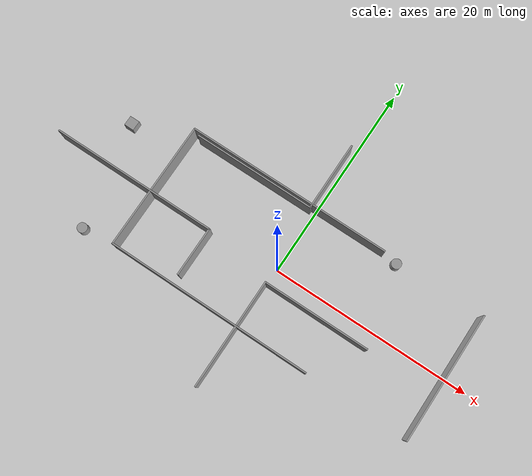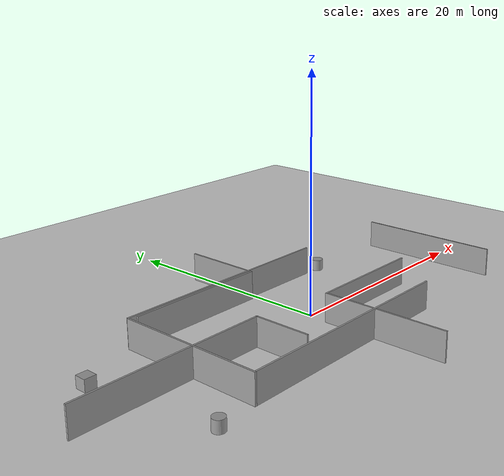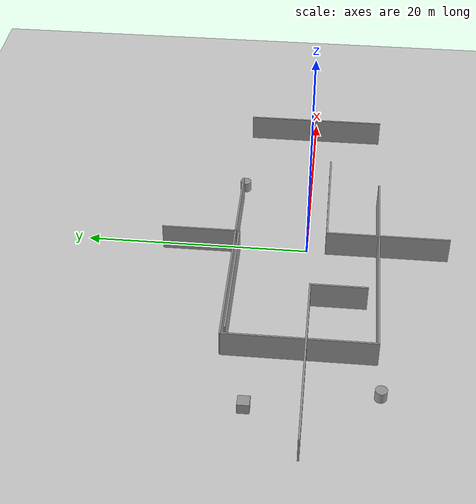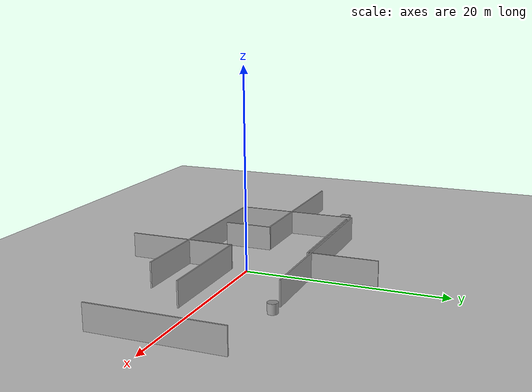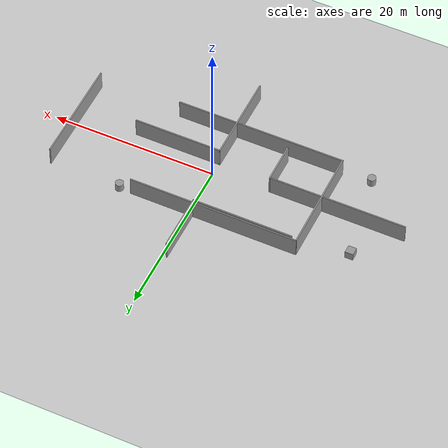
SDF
<sdf version="1.7">
 <world name="default">
  <light name="sun" type="directional">
   <pose>0 0 10 0 -0 0</pose>
   <diffuse>0.8 0.8 0.8 1</diffuse>
   <specular>0.2 0.2 0.2 1</specular>
   <attenuation>
    <range>1000</range>
    <constant>0.9</constant>
    <linear>0.01</linear>
    <quadratic>0.001</quadratic>
   </attenuation>
   <direction>-0.5 0.1 -0.9</direction>
   <spot><inner_angle>0</inner_angle><outer_angle>0</outer_angle><falloff>0</falloff></spot>
  </light>
  <model name="ground_plane">
   <static>1</static>
   <link name="link">
    <collision name="collision">
     <geometry><plane><normal>0 0 1</normal><size>100 100</size></plane></geometry>
     <surface>
      <contact><collide_bitmask>65535</collide_bitmask></contact>
      <friction><ode><mu>100</mu><mu2>50</mu2></ode></friction>
     </surface>
    </collision>
    <visual name="visual">
     <cast_shadows>0</cast_shadows>
     <geometry><plane><normal>0 0 1</normal><size>100 100</size></plane></geometry>
     <material>
      <script><uri>file://media/materials/scripts/gazebo.material</uri><name>Gazebo/Grey</name></script>
     </material>
    </visual>
   </link>
  </model>
  <gravity>0 0 -9.8</gravity>
  <magnetic_field>6e-06 2.3e-05 -4.2e-05</magnetic_field>
  <atmosphere type="adiabatic"/>
  <physics type="ode">
   <max_step_size>0.002</max_step_size>
   <real_time_factor>1</real_time_factor>
   <real_time_update_rate>500</real_time_update_rate>
  </physics>
  <scene><ambient>0.4 0.4 0.4 1</ambient><background>0.7 0.7 0.7 1</background><shadows>0</shadows></scene>
  <audio><device>default</device></audio>
  <spherical_coordinates>
   <surface_model>EARTH_WGS84</surface_model>
   <latitude_deg>0</latitude_deg>
   <longitude_deg>0</longitude_deg>
   <elevation>0</elevation>
   <heading_deg>0</heading_deg>
  </spherical_coordinates>
  <model name="room">
   <pose>-3.10712 0.08613 0 0 -0 0</pose>
   <link name="Wall_14">
    <collision name="Wall_14_Collision">
     <geometry><box><size>12.875 0.15 2.5</size></box></geometry>
     <pose>0 0 1.25 0 -0 0</pose>
    </collision>
    <visual name="Wall_14_Visual">
     <pose>0 0 1.25 0 -0 0</pose>
     <geometry><box><size>12.875 0.15 2.5</size></box></geometry>
     <material>
      <script><uri>file://media/materials/scripts/gazebo.material</uri><name>Gazebo/Grey</name></script>
      <ambient>1 1 1 1</ambient>
     </material>
     <meta><layer>0</layer></meta>
    </visual>
    <pose>-10.275 -0.083492 0 0 -0 -1.5708</pose>
   </link>
   <link name="Wall_15">
    <collision name="Wall_15_Collision">
     <geometry><box><size>20.625 0.15 2.5</size></box></geometry>
     <pose>0 0 1.25 0 -0 0</pose>
    </collision>
    <visual name="Wall_15_Visual">
     <pose>0 0 1.25 0 -0 0</pose>
     <geometry><box><size>20.625 0.15 2.5</size></box></geometry>
     <material>
      <script><uri>file://media/materials/scripts/gazebo.material</uri><name>Gazebo/Grey</name></script>
      <ambient>1 1 1 1</ambient>
     </material>
     <meta><layer>0</layer></meta>
    </visual>
    <pose>0 -6.44175 0 0 -0 0</pose>
   </link>
   <link name="Wall_16">
    <collision name="Wall_16_Collision">
     <geometry><box><size>12.875 0.15 2.5</size></box></geometry>
     <pose>0 0 1.25 0 -0 0</pose>
    </collision>
    <visual name="Wall_16_Visual">
     <pose>0 0 1.25 0 -0 0</pose>
     <geometry><box><size>12.875 0.15 2.5</size></box></geometry>
     <material>
      <script><uri>file://media/materials/scripts/gazebo.material</uri><name>Gazebo/Grey</name></script>
      <ambient>1 1 1 1</ambient>
     </material>
     <meta><layer>0</layer></meta>
    </visual>
    <pose>20.55 -0.083492 0 0 -0 1.5708</pose>
   </link>
   <link name="Wall_17">
    <collision name="Wall_17_Collision">
     <geometry><box><size>20.62508 0.15 2.5</size></box></geometry>
     <pose>0 0 1.25 0 -0 0</pose>
    </collision>
    <visual name="Wall_17_Visual">
     <pose>0 0 1.25 0 -0 0</pose>
     <geometry><box><size>20.62508 0.15 2.5</size></box></geometry>
     <material>
      <script><uri>file://media/materials/scripts/gazebo.material</uri><name>Gazebo/Grey</name></script>
      <ambient>1 1 1 1</ambient>
     </material>
     <meta><layer>0</layer></meta>
    </visual>
    <pose>0 6.35825 0 0 -0 3.14159</pose>
   </link>
   <link name="Wall_19">
    <collision name="Wall_19_Collision">
     <geometry><box><size>7 0.15 2.5</size></box></geometry>
     <pose>0 0 1.25 0 -0 0</pose>
    </collision>
    <visual name="Wall_19_Visual">
     <pose>0 0 1.25 0 -0 0</pose>
     <geometry><box><size>7 0.15 2.5</size></box></geometry>
     <material>
      <script><uri>file://media/materials/scripts/gazebo.material</uri><name>Gazebo/Grey</name></script>
      <ambient>1 1 1 1</ambient>
     </material>
     <meta><layer>0</layer></meta>
    </visual>
    <pose>2.55012 9.45849 0 0 -0 -1.5708</pose>
   </link>
   <link name="Wall_20">
    <collision name="Wall_20_Collision">
     <geometry><box><size>12.25 0.15 2.5</size></box></geometry>
     <pose>0 0 1.25 0 -0 0</pose>
    </collision>
    <visual name="Wall_20_Visual">
     <pose>0 0 1.25 0 -0 0</pose>
     <geometry><box><size>12.25 0.15 2.5</size></box></geometry>
     <material>
      <script><uri>file://media/materials/scripts/gazebo.material</uri><name>Gazebo/Grey</name></script>
      <ambient>1 1 1 1</ambient>
     </material>
     <meta><layer>0</layer></meta>
    </visual>
    <pose>-3.49988 6.03349 0 0 -0 3.14159</pose>
   </link>
   <link name="Wall_22">
    <collision name="Wall_22_Collision">
     <geometry><box><size>16.75 0.15 2.5</size></box></geometry>
     <pose>0 0 1.25 0 -0 0</pose>
    </collision>
    <visual name="Wall_22_Visual">
     <pose>0 0 1.25 0 -0 0</pose>
     <geometry><box><size>16.75 0.15 2.5</size></box></geometry>
     <material>
      <script><uri>file://media/materials/scripts/gazebo.material</uri><name>Gazebo/Grey</name></script>
      <ambient>1 1 1 1</ambient>
     </material>
     <meta><layer>0</layer></meta>
    </visual>
    <pose>-12.1568 -0.625152 0 0 -0 0</pose>
   </link>
   <link name="Wall_23">
    <collision name="Wall_23_Collision">
     <geometry><box><size>5 0.15 2.5</size></box></geometry>
     <pose>0 0 1.25 0 -0 0</pose>
    </collision>
    <visual name="Wall_23_Visual">
     <pose>0 0 1.25 0 -0 0</pose>
     <geometry><box><size>5 0.15 2.5</size></box></geometry>
     <material>
      <script><uri>file://media/materials/scripts/gazebo.material</uri><name>Gazebo/Grey</name></script>
      <ambient>1 1 1 1</ambient>
     </material>
     <meta><layer>0</layer></meta>
    </visual>
    <pose>-3.85679 -3.05015 0 0 -0 -1.5708</pose>
   </link>
   <link name="Wall_25">
    <collision name="Wall_25_Collision">
     <geometry><box><size>11 0.15 2.5</size></box></geometry>
     <pose>0 0 1.25 0 -0 0</pose>
    </collision>
    <visual name="Wall_25_Visual">
     <pose>0 0 1.25 0 -0 0</pose>
     <geometry><box><size>11 0.15 2.5</size></box></geometry>
     <material>
      <script><uri>file://media/materials/scripts/gazebo.material</uri><name>Gazebo/Grey</name></script>
      <ambient>1 1 1 1</ambient>
     </material>
     <meta><layer>0</layer></meta>
    </visual>
    <pose>2.97226 -7.23129 0 0 -0 1.5708</pose>
   </link>
   <link name="Wall_26">
    <collision name="Wall_26_Collision">
     <geometry><box><size>10.75 0.15 2.5</size></box></geometry>
     <pose>0 0 1.25 0 -0 0</pose>
    </collision>
    <visual name="Wall_26_Visual">
     <pose>0 0 1.25 0 -0 0</pose>
     <geometry><box><size>10.75 0.15 2.5</size></box></geometry>
     <material>
      <script><uri>file://media/materials/scripts/gazebo.material</uri><name>Gazebo/Grey</name></script>
      <ambient>1 1 1 1</ambient>
     </material>
     <meta><layer>0</layer></meta>
    </visual>
    <pose>8.27226 -1.80629 0 0 -0 0</pose>
   </link>
   <static>1</static>
  </model>
  <model name="unit_box">
   <pose>-18.9964 3.97073 0.499995 0 -1e-05 0</pose>
   <link name="link">
    <inertial>
     <mass>1</mass>
     <inertia>
      <ixx>0.166667</ixx>
      <ixy>0</ixy>
      <ixz>0</ixz>
      <iyy>0.166667</iyy>
      <iyz>0</iyz>
      <izz>0.166667</izz>
     </inertia>
    </inertial>
    <collision name="collision"><geometry><box><size>1 1 1</size></box></geometry></collision>
    <visual name="visual">
     <geometry><box><size>1 1 1</size></box></geometry>
     <material>
      <script><name>Gazebo/Grey</name><uri>file://media/materials/scripts/gazebo.material</uri></script>
     </material>
    </visual>
   </link>
  </model>
  <model name="unit_cylinder">
   <pose>-16.9484 -6.65411 0.499993 -3e-06 -4e-06 -0</pose>
   <link name="link">
    <inertial>
     <mass>1</mass>
     <inertia><ixx>0.145833</ixx><ixy>0</ixy><ixz>0</ixz><iyy>0.145833</iyy><iyz>0</iyz><izz>0.125</izz></inertia>
    </inertial>
    <collision name="collision">
     <geometry><cylinder><radius>0.5</radius><length>1</length></cylinder></geometry>
    </collision>
    <visual name="visual">
     <geometry><cylinder><radius>0.5</radius><length>1</length></cylinder></geometry>
     <material>
      <script><name>Gazebo/Grey</name><uri>file://media/materials/scripts/gazebo.material</uri></script>
     </material>
    </visual>
   </link>
  </model>
  <model name="unit_cylinder_0">
   <pose>8.65712 6.37287 0.499997 3e-06 4e-06 -0</pose>
   <link name="link">
    <inertial>
     <mass>1</mass>
     <inertia><ixx>0.145833</ixx><ixy>0</ixy><ixz>0</ixz><iyy>0.145833</iyy><iyz>0</iyz><izz>0.125</izz></inertia>
    </inertial>
    <collision name="collision">
     <geometry><cylinder><radius>0.5</radius><length>1</length></cylinder></geometry>
    </collision>
    <visual name="visual">
     <geometry><cylinder><radius>0.5</radius><length>1</length></cylinder></geometry>
     <material>
      <script><name>Gazebo/Grey</name><uri>file://media/materials/scripts/gazebo.material</uri></script>
     </material>
    </visual>
   </link>
  </model>
 </world>
</sdf>
